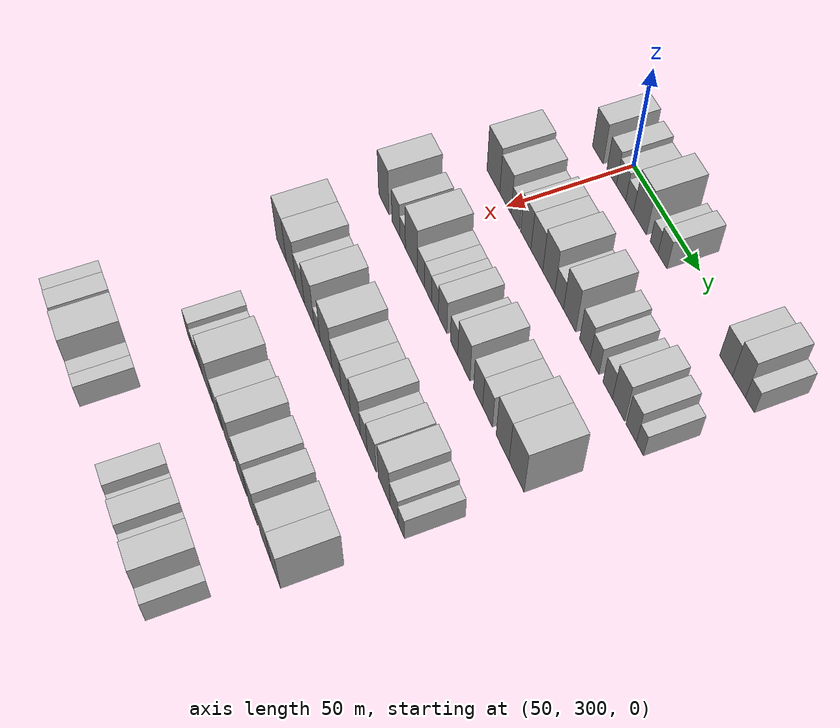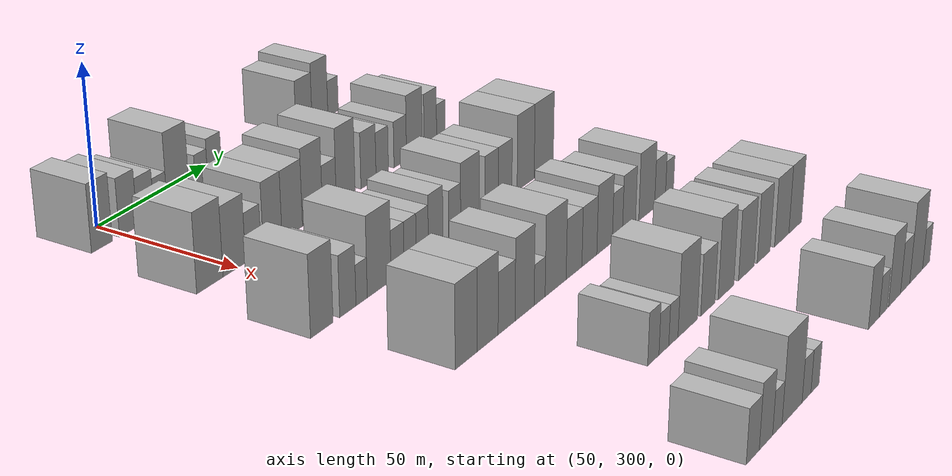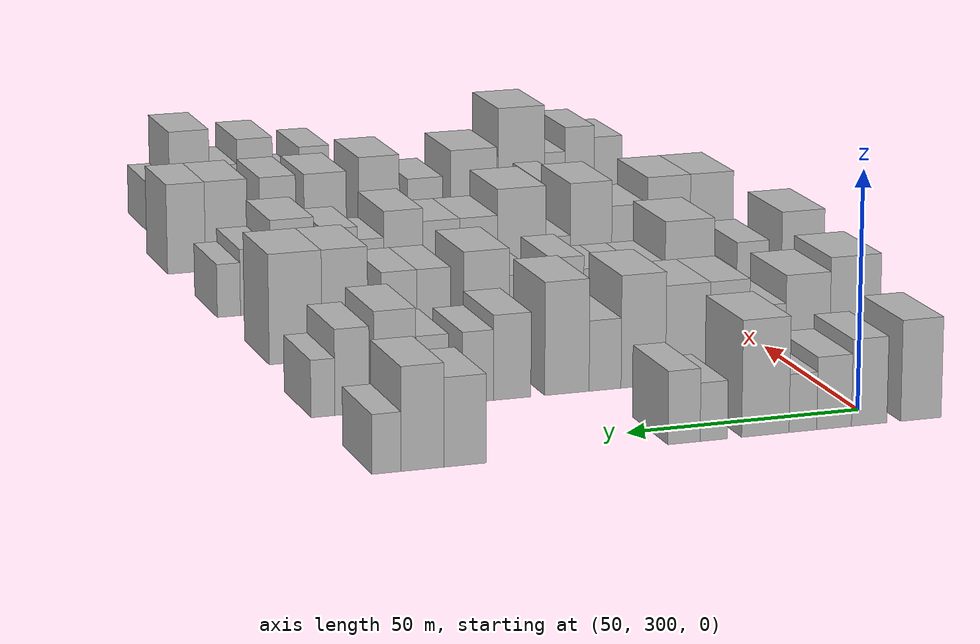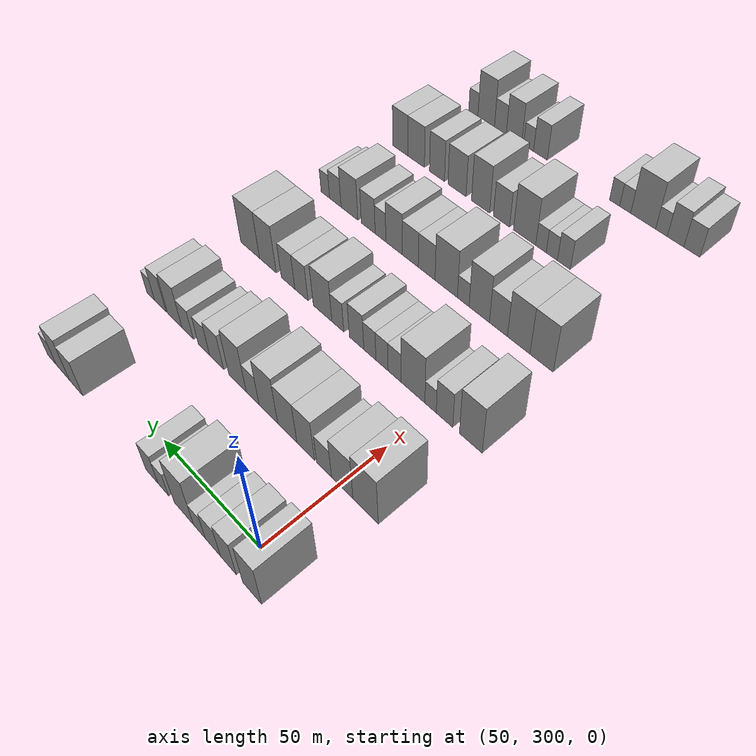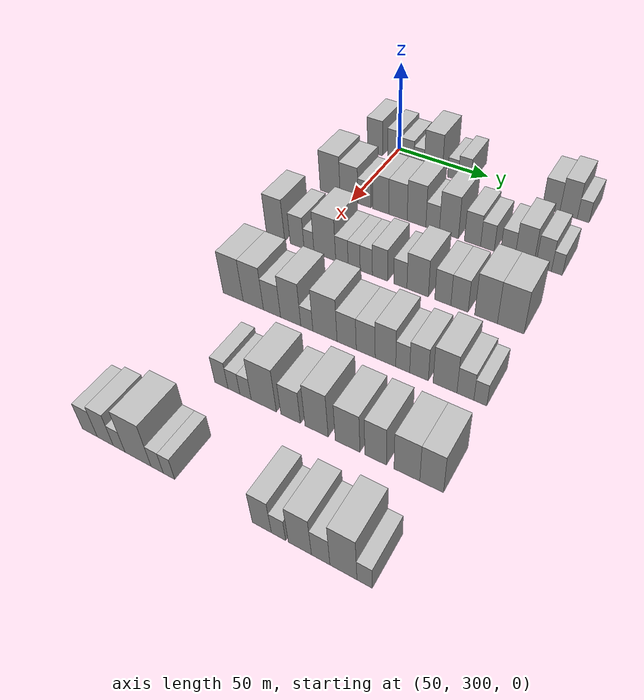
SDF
<sdf version="1.6">
 <world name="default">
  <model name="building_101">
   <static>1</static>
   <pose>50.0000 290.6442 0 0.000000 0.000000 0.000000</pose>
   <link name="link">
    <pose>0 0 10.50 0 0 0</pose>
    <collision name="collision"><geometry><box><size>20.0000 8.8867 21.0000</size></box></geometry></collision>
    <visual name="visual">
     <cast_shadows>0</cast_shadows>
     <geometry><box><size>20.0000 8.8867 21.0000</size></box></geometry>
     <material>
      <script>
       <uri>model://HANNAS_wall/materials/scripts</uri>
       <uri>model://HANNAS_wall/materials/textures</uri>
       <name>vrc/HANNAS_wall</name>
      </script>
     </material>
    </visual>
   </link>
  </model>
  <model name="building_102">
   <static>1</static>
   <pose>50.0000 301.9506 0 0.000000 0.000000 0.000000</pose>
   <link name="link">
    <pose>0 0 9.00 0 0 0</pose>
    <collision name="collision"><geometry><box><size>20.0000 7.7261 18.0000</size></box></geometry></collision>
    <visual name="visual">
     <cast_shadows>0</cast_shadows>
     <geometry><box><size>20.0000 7.7261 18.0000</size></box></geometry>
     <material>
      <script>
       <uri>model://HANNAS_wall/materials/scripts</uri>
       <uri>model://HANNAS_wall/materials/textures</uri>
       <name>vrc/HANNAS_wall</name>
      </script>
     </material>
    </visual>
   </link>
  </model>
  <model name="building_103">
   <static>1</static>
   <pose>50.0000 309.5635 0 0.000000 0.000000 0.000000</pose>
   <link name="link">
    <pose>0 0 7.50 0 0 0</pose>
    <collision name="collision"><geometry><box><size>20.0000 7.4997 15.0000</size></box></geometry></collision>
    <visual name="visual">
     <cast_shadows>0</cast_shadows>
     <geometry><box><size>20.0000 7.4997 15.0000</size></box></geometry>
     <material>
      <script>
       <uri>model://HANNAS_wall/materials/scripts</uri>
       <uri>model://HANNAS_wall/materials/textures</uri>
       <name>vrc/HANNAS_wall</name>
      </script>
     </material>
    </visual>
   </link>
  </model>
  <model name="building_104">
   <static>1</static>
   <pose>50.0000 316.2951 0 0.000000 0.000000 0.000000</pose>
   <link name="link">
    <pose>0 0 6.00 0 0 0</pose>
    <collision name="collision"><geometry><box><size>20.0000 5.9634 12.0000</size></box></geometry></collision>
    <visual name="visual">
     <cast_shadows>0</cast_shadows>
     <geometry><box><size>20.0000 5.9634 12.0000</size></box></geometry>
     <material>
      <script>
       <uri>model://HANNAS_wall/materials/scripts</uri>
       <uri>model://HANNAS_wall/materials/textures</uri>
       <name>vrc/HANNAS_wall</name>
      </script>
     </material>
    </visual>
   </link>
  </model>
  <model name="building_105">
   <static>1</static>
   <pose>50.0000 324.3649 0 0.000000 0.000000 0.000000</pose>
   <link name="link">
    <pose>0 0 12.00 0 0 0</pose>
    <collision name="collision"><geometry><box><size>20.0000 10.1764 24.0000</size></box></geometry></collision>
    <visual name="visual">
     <cast_shadows>0</cast_shadows>
     <geometry><box><size>20.0000 10.1764 24.0000</size></box></geometry>
     <material>
      <script>
       <uri>model://HANNAS_wall/materials/scripts</uri>
       <uri>model://HANNAS_wall/materials/textures</uri>
       <name>vrc/HANNAS_wall</name>
      </script>
     </material>
    </visual>
   </link>
  </model>
  <model name="building_106">
   <static>1</static>
   <pose>50.0000 335.3539 0 0.000000 0.000000 0.000000</pose>
   <link name="link">
    <pose>0 0 6.00 0 0 0</pose>
    <collision name="collision"><geometry><box><size>20.0000 5.8014 12.0000</size></box></geometry></collision>
    <visual name="visual">
     <cast_shadows>0</cast_shadows>
     <geometry><box><size>20.0000 5.8014 12.0000</size></box></geometry>
     <material>
      <script>
       <uri>model://HANNAS_wall/materials/scripts</uri>
       <uri>model://HANNAS_wall/materials/textures</uri>
       <name>vrc/HANNAS_wall</name>
      </script>
     </material>
    </visual>
   </link>
  </model>
  <model name="building_107">
   <static>1</static>
   <pose>50.0000 341.6605 0 0.000000 0.000000 0.000000</pose>
   <link name="link">
    <pose>0 0 7.50 0 0 0</pose>
    <collision name="collision"><geometry><box><size>20.0000 6.8118 15.0000</size></box></geometry></collision>
    <visual name="visual">
     <cast_shadows>0</cast_shadows>
     <geometry><box><size>20.0000 6.8118 15.0000</size></box></geometry>
     <material>
      <script>
       <uri>model://HANNAS_wall/materials/scripts</uri>
       <uri>model://HANNAS_wall/materials/textures</uri>
       <name>vrc/HANNAS_wall</name>
      </script>
     </material>
    </visual>
   </link>
  </model>
  <model name="building_108">
   <static>1</static>
   <pose>50.0000 387.0330 0 0.000000 0.000000 0.000000</pose>
   <link name="link">
    <pose>0 0 9.00 0 0 0</pose>
    <collision name="collision"><geometry><box><size>20.0000 8.6444 18.0000</size></box></geometry></collision>
    <visual name="visual">
     <cast_shadows>0</cast_shadows>
     <geometry><box><size>20.0000 8.6444 18.0000</size></box></geometry>
     <material>
      <script>
       <uri>model://HANNAS_wall/materials/scripts</uri>
       <uri>model://HANNAS_wall/materials/textures</uri>
       <name>vrc/HANNAS_wall</name>
      </script>
     </material>
    </visual>
   </link>
  </model>
  <model name="building_109">
   <static>1</static>
   <pose>50.0000 395.6896 0 0.000000 0.000000 0.000000</pose>
   <link name="link">
    <pose>0 0 10.50 0 0 0</pose>
    <collision name="collision"><geometry><box><size>20.0000 8.6689 21.0000</size></box></geometry></collision>
    <visual name="visual">
     <cast_shadows>0</cast_shadows>
     <geometry><box><size>20.0000 8.6689 21.0000</size></box></geometry>
     <material>
      <script>
       <uri>model://HANNAS_wall/materials/scripts</uri>
       <uri>model://HANNAS_wall/materials/textures</uri>
       <name>vrc/HANNAS_wall</name>
      </script>
     </material>
    </visual>
   </link>
  </model>
  <model name="building_110">
   <static>1</static>
   <pose>50.0000 402.9564 0 0.000000 0.000000 0.000000</pose>
   <link name="link">
    <pose>0 0 6.00 0 0 0</pose>
    <collision name="collision"><geometry><box><size>20.0000 5.8646 12.0000</size></box></geometry></collision>
    <visual name="visual">
     <cast_shadows>0</cast_shadows>
     <geometry><box><size>20.0000 5.8646 12.0000</size></box></geometry>
     <material>
      <script>
       <uri>model://HANNAS_wall/materials/scripts</uri>
       <uri>model://HANNAS_wall/materials/textures</uri>
       <name>vrc/HANNAS_wall</name>
      </script>
     </material>
    </visual>
   </link>
  </model>
  <model name="building_231">
   <static>1</static>
   <pose>90.0000 287.8248 0 0.000000 0.000000 0.000000</pose>
   <link name="link">
    <pose>0 0 12.00 0 0 0</pose>
    <collision name="collision"><geometry><box><size>20.0000 11.4323 24.0000</size></box></geometry></collision>
    <visual name="visual">
     <cast_shadows>0</cast_shadows>
     <geometry><box><size>20.0000 11.4323 24.0000</size></box></geometry>
     <material>
      <script>
       <uri>model://HANNAS_wall/materials/scripts</uri>
       <uri>model://HANNAS_wall/materials/textures</uri>
       <name>vrc/HANNAS_wall</name>
      </script>
     </material>
    </visual>
   </link>
  </model>
  <model name="building_232">
   <static>1</static>
   <pose>90.0000 298.5583 0 0.000000 0.000000 0.000000</pose>
   <link name="link">
    <pose>0 0 10.50 0 0 0</pose>
    <collision name="collision"><geometry><box><size>20.0000 10.0346 21.0000</size></box></geometry></collision>
    <visual name="visual">
     <cast_shadows>0</cast_shadows>
     <geometry><box><size>20.0000 10.0346 21.0000</size></box></geometry>
     <material>
      <script>
       <uri>model://HANNAS_wall/materials/scripts</uri>
       <uri>model://HANNAS_wall/materials/textures</uri>
       <name>vrc/HANNAS_wall</name>
      </script>
     </material>
    </visual>
   </link>
  </model>
  <model name="building_233">
   <static>1</static>
   <pose>90.0000 307.1530 0 0.000000 0.000000 0.000000</pose>
   <link name="link">
    <pose>0 0 7.50 0 0 0</pose>
    <collision name="collision"><geometry><box><size>20.0000 7.1548 15.0000</size></box></geometry></collision>
    <visual name="visual">
     <cast_shadows>0</cast_shadows>
     <geometry><box><size>20.0000 7.1548 15.0000</size></box></geometry>
     <material>
      <script>
       <uri>model://HANNAS_wall/materials/scripts</uri>
       <uri>model://HANNAS_wall/materials/textures</uri>
       <name>vrc/HANNAS_wall</name>
      </script>
     </material>
    </visual>
   </link>
  </model>
  <model name="building_234">
   <static>1</static>
   <pose>90.0000 316.1189 0 0.000000 0.000000 0.000000</pose>
   <link name="link">
    <pose>0 0 10.50 0 0 0</pose>
    <collision name="collision"><geometry><box><size>20.0000 8.7771 21.0000</size></box></geometry></collision>
    <visual name="visual">
     <cast_shadows>0</cast_shadows>
     <geometry><box><size>20.0000 8.7771 21.0000</size></box></geometry>
     <material>
      <script>
       <uri>model://HANNAS_wall/materials/scripts</uri>
       <uri>model://HANNAS_wall/materials/textures</uri>
       <name>vrc/HANNAS_wall</name>
      </script>
     </material>
    </visual>
   </link>
  </model>
  <model name="building_235">
   <static>1</static>
   <pose>90.0000 325.4033 0 0.000000 0.000000 0.000000</pose>
   <link name="link">
    <pose>0 0 10.50 0 0 0</pose>
    <collision name="collision"><geometry><box><size>20.0000 9.7916 21.0000</size></box></geometry></collision>
    <visual name="visual">
     <cast_shadows>0</cast_shadows>
     <geometry><box><size>20.0000 9.7916 21.0000</size></box></geometry>
     <material>
      <script>
       <uri>model://HANNAS_wall/materials/scripts</uri>
       <uri>model://HANNAS_wall/materials/textures</uri>
       <name>vrc/HANNAS_wall</name>
      </script>
     </material>
    </visual>
   </link>
  </model>
  <model name="building_236">
   <static>1</static>
   <pose>90.0000 335.2184 0 0.000000 0.000000 0.000000</pose>
   <link name="link">
    <pose>0 0 12.00 0 0 0</pose>
    <collision name="collision"><geometry><box><size>20.0000 9.8387 24.0000</size></box></geometry></collision>
    <visual name="visual">
     <cast_shadows>0</cast_shadows>
     <geometry><box><size>20.0000 9.8387 24.0000</size></box></geometry>
     <material>
      <script>
       <uri>model://HANNAS_wall/materials/scripts</uri>
       <uri>model://HANNAS_wall/materials/textures</uri>
       <name>vrc/HANNAS_wall</name>
      </script>
     </material>
    </visual>
   </link>
  </model>
  <model name="building_237">
   <static>1</static>
   <pose>90.0000 343.6370 0 0.000000 0.000000 0.000000</pose>
   <link name="link">
    <pose>0 0 7.50 0 0 0</pose>
    <collision name="collision"><geometry><box><size>20.0000 6.9984 15.0000</size></box></geometry></collision>
    <visual name="visual">
     <cast_shadows>0</cast_shadows>
     <geometry><box><size>20.0000 6.9984 15.0000</size></box></geometry>
     <material>
      <script>
       <uri>model://HANNAS_wall/materials/scripts</uri>
       <uri>model://HANNAS_wall/materials/textures</uri>
       <name>vrc/HANNAS_wall</name>
      </script>
     </material>
    </visual>
   </link>
  </model>
  <model name="building_238">
   <static>1</static>
   <pose>90.0000 351.9722 0 0.000000 0.000000 0.000000</pose>
   <link name="link">
    <pose>0 0 12.00 0 0 0</pose>
    <collision name="collision"><geometry><box><size>20.0000 9.6720 24.0000</size></box></geometry></collision>
    <visual name="visual">
     <cast_shadows>0</cast_shadows>
     <geometry><box><size>20.0000 9.6720 24.0000</size></box></geometry>
     <material>
      <script>
       <uri>model://HANNAS_wall/materials/scripts</uri>
       <uri>model://HANNAS_wall/materials/textures</uri>
       <name>vrc/HANNAS_wall</name>
      </script>
     </material>
    </visual>
   </link>
  </model>
  <model name="building_239">
   <static>1</static>
   <pose>90.0000 363.8295 0 0.000000 0.000000 0.000000</pose>
   <link name="link">
    <pose>0 0 9.00 0 0 0</pose>
    <collision name="collision"><geometry><box><size>20.0000 8.0427 18.0000</size></box></geometry></collision>
    <visual name="visual">
     <cast_shadows>0</cast_shadows>
     <geometry><box><size>20.0000 8.0427 18.0000</size></box></geometry>
     <material>
      <script>
       <uri>model://HANNAS_wall/materials/scripts</uri>
       <uri>model://HANNAS_wall/materials/textures</uri>
       <name>vrc/HANNAS_wall</name>
      </script>
     </material>
    </visual>
   </link>
  </model>
  <model name="building_240">
   <static>1</static>
   <pose>90.0000 371.1917 0 0.000000 0.000000 0.000000</pose>
   <link name="link">
    <pose>0 0 7.50 0 0 0</pose>
    <collision name="collision"><geometry><box><size>20.0000 6.6816 15.0000</size></box></geometry></collision>
    <visual name="visual">
     <cast_shadows>0</cast_shadows>
     <geometry><box><size>20.0000 6.6816 15.0000</size></box></geometry>
     <material>
      <script>
       <uri>model://HANNAS_wall/materials/scripts</uri>
       <uri>model://HANNAS_wall/materials/textures</uri>
       <name>vrc/HANNAS_wall</name>
      </script>
     </material>
    </visual>
   </link>
  </model>
  <model name="building_241">
   <static>1</static>
   <pose>90.0000 380.9994 0 0.000000 0.000000 0.000000</pose>
   <link name="link">
    <pose>0 0 7.50 0 0 0</pose>
    <collision name="collision"><geometry><box><size>20.0000 6.9339 15.0000</size></box></geometry></collision>
    <visual name="visual">
     <cast_shadows>0</cast_shadows>
     <geometry><box><size>20.0000 6.9339 15.0000</size></box></geometry>
     <material>
      <script>
       <uri>model://HANNAS_wall/materials/scripts</uri>
       <uri>model://HANNAS_wall/materials/textures</uri>
       <name>vrc/HANNAS_wall</name>
      </script>
     </material>
    </visual>
   </link>
  </model>
  <model name="building_242">
   <static>1</static>
   <pose>90.0000 388.9169 0 0.000000 0.000000 0.000000</pose>
   <link name="link">
    <pose>0 0 10.50 0 0 0</pose>
    <collision name="collision"><geometry><box><size>20.0000 8.9010 21.0000</size></box></geometry></collision>
    <visual name="visual">
     <cast_shadows>0</cast_shadows>
     <geometry><box><size>20.0000 8.9010 21.0000</size></box></geometry>
     <material>
      <script>
       <uri>model://HANNAS_wall/materials/scripts</uri>
       <uri>model://HANNAS_wall/materials/textures</uri>
       <name>vrc/HANNAS_wall</name>
      </script>
     </material>
    </visual>
   </link>
  </model>
  <model name="building_243">
   <static>1</static>
   <pose>90.0000 397.9964 0 0.000000 0.000000 0.000000</pose>
   <link name="link">
    <pose>0 0 9.00 0 0 0</pose>
    <collision name="collision"><geometry><box><size>20.0000 7.2580 18.0000</size></box></geometry></collision>
    <visual name="visual">
     <cast_shadows>0</cast_shadows>
     <geometry><box><size>20.0000 7.2580 18.0000</size></box></geometry>
     <material>
      <script>
       <uri>model://HANNAS_wall/materials/scripts</uri>
       <uri>model://HANNAS_wall/materials/textures</uri>
       <name>vrc/HANNAS_wall</name>
      </script>
     </material>
    </visual>
   </link>
  </model>
  <model name="building_244">
   <static>1</static>
   <pose>90.0000 404.1428 0 0.000000 0.000000 0.000000</pose>
   <link name="link">
    <pose>0 0 6.00 0 0 0</pose>
    <collision name="collision"><geometry><box><size>20.0000 5.0347 12.0000</size></box></geometry></collision>
    <visual name="visual">
     <cast_shadows>0</cast_shadows>
     <geometry><box><size>20.0000 5.0347 12.0000</size></box></geometry>
     <material>
      <script>
       <uri>model://HANNAS_wall/materials/scripts</uri>
       <uri>model://HANNAS_wall/materials/textures</uri>
       <name>vrc/HANNAS_wall</name>
      </script>
     </material>
    </visual>
   </link>
  </model>
  <model name="building_364">
   <static>1</static>
   <pose>130.0000 282.9836 0 0.000000 0.000000 0.000000</pose>
   <link name="link">
    <pose>0 0 12.00 0 0 0</pose>
    <collision name="collision"><geometry><box><size>20.0000 10.0665 24.0000</size></box></geometry></collision>
    <visual name="visual">
     <cast_shadows>0</cast_shadows>
     <geometry><box><size>20.0000 10.0665 24.0000</size></box></geometry>
     <material>
      <script>
       <uri>model://HANNAS_wall/materials/scripts</uri>
       <uri>model://HANNAS_wall/materials/textures</uri>
       <name>vrc/HANNAS_wall</name>
      </script>
     </material>
    </visual>
   </link>
  </model>
  <model name="building_365">
   <static>1</static>
   <pose>130.0000 294.7832 0 0.000000 0.000000 0.000000</pose>
   <link name="link">
    <pose>0 0 9.00 0 0 0</pose>
    <collision name="collision"><geometry><box><size>20.0000 7.5327 18.0000</size></box></geometry></collision>
    <visual name="visual">
     <cast_shadows>0</cast_shadows>
     <geometry><box><size>20.0000 7.5327 18.0000</size></box></geometry>
     <material>
      <script>
       <uri>model://HANNAS_wall/materials/scripts</uri>
       <uri>model://HANNAS_wall/materials/textures</uri>
       <name>vrc/HANNAS_wall</name>
      </script>
     </material>
    </visual>
   </link>
  </model>
  <model name="building_366">
   <static>1</static>
   <pose>130.0000 301.1990 0 0.000000 0.000000 0.000000</pose>
   <link name="link">
    <pose>0 0 6.00 0 0 0</pose>
    <collision name="collision"><geometry><box><size>20.0000 5.2990 12.0000</size></box></geometry></collision>
    <visual name="visual">
     <cast_shadows>0</cast_shadows>
     <geometry><box><size>20.0000 5.2990 12.0000</size></box></geometry>
     <material>
      <script>
       <uri>model://HANNAS_wall/materials/scripts</uri>
       <uri>model://HANNAS_wall/materials/textures</uri>
       <name>vrc/HANNAS_wall</name>
      </script>
     </material>
    </visual>
   </link>
  </model>
  <model name="building_367">
   <static>1</static>
   <pose>130.0000 309.5698 0 0.000000 0.000000 0.000000</pose>
   <link name="link">
    <pose>0 0 12.00 0 0 0</pose>
    <collision name="collision"><geometry><box><size>20.0000 11.4425 24.0000</size></box></geometry></collision>
    <visual name="visual">
     <cast_shadows>0</cast_shadows>
     <geometry><box><size>20.0000 11.4425 24.0000</size></box></geometry>
     <material>
      <script>
       <uri>model://HANNAS_wall/materials/scripts</uri>
       <uri>model://HANNAS_wall/materials/textures</uri>
       <name>vrc/HANNAS_wall</name>
      </script>
     </material>
    </visual>
   </link>
  </model>
  <model name="building_368">
   <static>1</static>
   <pose>130.0000 318.5091 0 0.000000 0.000000 0.000000</pose>
   <link name="link">
    <pose>0 0 7.50 0 0 0</pose>
    <collision name="collision"><geometry><box><size>20.0000 6.4362 15.0000</size></box></geometry></collision>
    <visual name="visual">
     <cast_shadows>0</cast_shadows>
     <geometry><box><size>20.0000 6.4362 15.0000</size></box></geometry>
     <material>
      <script>
       <uri>model://HANNAS_wall/materials/scripts</uri>
       <uri>model://HANNAS_wall/materials/textures</uri>
       <name>vrc/HANNAS_wall</name>
      </script>
     </material>
    </visual>
   </link>
  </model>
  <model name="building_369">
   <static>1</static>
   <pose>130.0000 324.7804 0 0.000000 0.000000 0.000000</pose>
   <link name="link">
    <pose>0 0 7.50 0 0 0</pose>
    <collision name="collision"><geometry><box><size>20.0000 6.1064 15.0000</size></box></geometry></collision>
    <visual name="visual">
     <cast_shadows>0</cast_shadows>
     <geometry><box><size>20.0000 6.1064 15.0000</size></box></geometry>
     <material>
      <script>
       <uri>model://HANNAS_wall/materials/scripts</uri>
       <uri>model://HANNAS_wall/materials/textures</uri>
       <name>vrc/HANNAS_wall</name>
      </script>
     </material>
    </visual>
   </link>
  </model>
  <model name="building_370">
   <static>1</static>
   <pose>130.0000 330.9156 0 0.000000 0.000000 0.000000</pose>
   <link name="link">
    <pose>0 0 7.50 0 0 0</pose>
    <collision name="collision"><geometry><box><size>20.0000 6.1640 15.0000</size></box></geometry></collision>
    <visual name="visual">
     <cast_shadows>0</cast_shadows>
     <geometry><box><size>20.0000 6.1640 15.0000</size></box></geometry>
     <material>
      <script>
       <uri>model://HANNAS_wall/materials/scripts</uri>
       <uri>model://HANNAS_wall/materials/textures</uri>
       <name>vrc/HANNAS_wall</name>
      </script>
     </material>
    </visual>
   </link>
  </model>
  <model name="building_371">
   <static>1</static>
   <pose>130.0000 337.7819 0 0.000000 0.000000 0.000000</pose>
   <link name="link">
    <pose>0 0 9.00 0 0 0</pose>
    <collision name="collision"><geometry><box><size>20.0000 7.5685 18.0000</size></box></geometry></collision>
    <visual name="visual">
     <cast_shadows>0</cast_shadows>
     <geometry><box><size>20.0000 7.5685 18.0000</size></box></geometry>
     <material>
      <script>
       <uri>model://HANNAS_wall/materials/scripts</uri>
       <uri>model://HANNAS_wall/materials/textures</uri>
       <name>vrc/HANNAS_wall</name>
      </script>
     </material>
    </visual>
   </link>
  </model>
  <model name="building_372">
   <static>1</static>
   <pose>130.0000 347.7725 0 0.000000 0.000000 0.000000</pose>
   <link name="link">
    <pose>0 0 7.50 0 0 0</pose>
    <collision name="collision"><geometry><box><size>20.0000 6.4128 15.0000</size></box></geometry></collision>
    <visual name="visual">
     <cast_shadows>0</cast_shadows>
     <geometry><box><size>20.0000 6.4128 15.0000</size></box></geometry>
     <material>
      <script>
       <uri>model://HANNAS_wall/materials/scripts</uri>
       <uri>model://HANNAS_wall/materials/textures</uri>
       <name>vrc/HANNAS_wall</name>
      </script>
     </material>
    </visual>
   </link>
  </model>
  <model name="building_373">
   <static>1</static>
   <pose>130.0000 356.0999 0 0.000000 0.000000 0.000000</pose>
   <link name="link">
    <pose>0 0 10.50 0 0 0</pose>
    <collision name="collision"><geometry><box><size>20.0000 10.2420 21.0000</size></box></geometry></collision>
    <visual name="visual">
     <cast_shadows>0</cast_shadows>
     <geometry><box><size>20.0000 10.2420 21.0000</size></box></geometry>
     <material>
      <script>
       <uri>model://HANNAS_wall/materials/scripts</uri>
       <uri>model://HANNAS_wall/materials/textures</uri>
       <name>vrc/HANNAS_wall</name>
      </script>
     </material>
    </visual>
   </link>
  </model>
  <model name="building_374">
   <static>1</static>
   <pose>130.0000 367.9770 0 0.000000 0.000000 0.000000</pose>
   <link name="link">
    <pose>0 0 9.00 0 0 0</pose>
    <collision name="collision"><geometry><box><size>20.0000 7.5122 18.0000</size></box></geometry></collision>
    <visual name="visual">
     <cast_shadows>0</cast_shadows>
     <geometry><box><size>20.0000 7.5122 18.0000</size></box></geometry>
     <material>
      <script>
       <uri>model://HANNAS_wall/materials/scripts</uri>
       <uri>model://HANNAS_wall/materials/textures</uri>
       <name>vrc/HANNAS_wall</name>
      </script>
     </material>
    </visual>
   </link>
  </model>
  <model name="building_375">
   <static>1</static>
   <pose>130.0000 375.6796 0 0.000000 0.000000 0.000000</pose>
   <link name="link">
    <pose>0 0 9.00 0 0 0</pose>
    <collision name="collision"><geometry><box><size>20.0000 7.8931 18.0000</size></box></geometry></collision>
    <visual name="visual">
     <cast_shadows>0</cast_shadows>
     <geometry><box><size>20.0000 7.8931 18.0000</size></box></geometry>
     <material>
      <script>
       <uri>model://HANNAS_wall/materials/scripts</uri>
       <uri>model://HANNAS_wall/materials/textures</uri>
       <name>vrc/HANNAS_wall</name>
      </script>
     </material>
    </visual>
   </link>
  </model>
  <model name="building_376">
   <static>1</static>
   <pose>130.0000 387.6899 0 0.000000 0.000000 0.000000</pose>
   <link name="link">
    <pose>0 0 12.00 0 0 0</pose>
    <collision name="collision"><geometry><box><size>20.0000 10.1274 24.0000</size></box></geometry></collision>
    <visual name="visual">
     <cast_shadows>0</cast_shadows>
     <geometry><box><size>20.0000 10.1274 24.0000</size></box></geometry>
     <material>
      <script>
       <uri>model://HANNAS_wall/materials/scripts</uri>
       <uri>model://HANNAS_wall/materials/textures</uri>
       <name>vrc/HANNAS_wall</name>
      </script>
     </material>
    </visual>
   </link>
  </model>
  <model name="building_377">
   <static>1</static>
   <pose>130.0000 398.5614 0 0.000000 0.000000 0.000000</pose>
   <link name="link">
    <pose>0 0 12.00 0 0 0</pose>
    <collision name="collision"><geometry><box><size>20.0000 11.6157 24.0000</size></box></geometry></collision>
    <visual name="visual">
     <cast_shadows>0</cast_shadows>
     <geometry><box><size>20.0000 11.6157 24.0000</size></box></geometry>
     <material>
      <script>
       <uri>model://HANNAS_wall/materials/scripts</uri>
       <uri>model://HANNAS_wall/materials/textures</uri>
       <name>vrc/HANNAS_wall</name>
      </script>
     </material>
    </visual>
   </link>
  </model>
  <model name="building_508">
   <static>1</static>
   <pose>170.0000 288.6994 0 0.000000 0.000000 0.000000</pose>
   <link name="link">
    <pose>0 0 12.00 0 0 0</pose>
    <collision name="collision"><geometry><box><size>20.0000 10.4702 24.0000</size></box></geometry></collision>
    <visual name="visual">
     <cast_shadows>0</cast_shadows>
     <geometry><box><size>20.0000 10.4702 24.0000</size></box></geometry>
     <material>
      <script>
       <uri>model://HANNAS_wall/materials/scripts</uri>
       <uri>model://HANNAS_wall/materials/textures</uri>
       <name>vrc/HANNAS_wall</name>
      </script>
     </material>
    </visual>
   </link>
  </model>
  <model name="building_509">
   <static>1</static>
   <pose>170.0000 299.1387 0 0.000000 0.000000 0.000000</pose>
   <link name="link">
    <pose>0 0 12.00 0 0 0</pose>
    <collision name="collision"><geometry><box><size>20.0000 10.4083 24.0000</size></box></geometry></collision>
    <visual name="visual">
     <cast_shadows>0</cast_shadows>
     <geometry><box><size>20.0000 10.4083 24.0000</size></box></geometry>
     <material>
      <script>
       <uri>model://HANNAS_wall/materials/scripts</uri>
       <uri>model://HANNAS_wall/materials/textures</uri>
       <name>vrc/HANNAS_wall</name>
      </script>
     </material>
    </visual>
   </link>
  </model>
  <model name="building_510">
   <static>1</static>
   <pose>170.0000 308.6400 0 0.000000 0.000000 0.000000</pose>
   <link name="link">
    <pose>0 0 9.00 0 0 0</pose>
    <collision name="collision"><geometry><box><size>20.0000 8.5945 18.0000</size></box></geometry></collision>
    <visual name="visual">
     <cast_shadows>0</cast_shadows>
     <geometry><box><size>20.0000 8.5945 18.0000</size></box></geometry>
     <material>
      <script>
       <uri>model://HANNAS_wall/materials/scripts</uri>
       <uri>model://HANNAS_wall/materials/textures</uri>
       <name>vrc/HANNAS_wall</name>
      </script>
     </material>
    </visual>
   </link>
  </model>
  <model name="building_511">
   <static>1</static>
   <pose>170.0000 317.9187 0 0.000000 0.000000 0.000000</pose>
   <link name="link">
    <pose>0 0 12.00 0 0 0</pose>
    <collision name="collision"><geometry><box><size>20.0000 9.9629 24.0000</size></box></geometry></collision>
    <visual name="visual">
     <cast_shadows>0</cast_shadows>
     <geometry><box><size>20.0000 9.9629 24.0000</size></box></geometry>
     <material>
      <script>
       <uri>model://HANNAS_wall/materials/scripts</uri>
       <uri>model://HANNAS_wall/materials/textures</uri>
       <name>vrc/HANNAS_wall</name>
      </script>
     </material>
    </visual>
   </link>
  </model>
  <model name="building_512">
   <static>1</static>
   <pose>170.0000 325.8281 0 0.000000 0.000000 0.000000</pose>
   <link name="link">
    <pose>0 0 6.00 0 0 0</pose>
    <collision name="collision"><geometry><box><size>20.0000 5.8559 12.0000</size></box></geometry></collision>
    <visual name="visual">
     <cast_shadows>0</cast_shadows>
     <geometry><box><size>20.0000 5.8559 12.0000</size></box></geometry>
     <material>
      <script>
       <uri>model://HANNAS_wall/materials/scripts</uri>
       <uri>model://HANNAS_wall/materials/textures</uri>
       <name>vrc/HANNAS_wall</name>
      </script>
     </material>
    </visual>
   </link>
  </model>
  <model name="building_513">
   <static>1</static>
   <pose>170.0000 334.4964 0 0.000000 0.000000 0.000000</pose>
   <link name="link">
    <pose>0 0 12.00 0 0 0</pose>
    <collision name="collision"><geometry><box><size>20.0000 11.4805 24.0000</size></box></geometry></collision>
    <visual name="visual">
     <cast_shadows>0</cast_shadows>
     <geometry><box><size>20.0000 11.4805 24.0000</size></box></geometry>
     <material>
      <script>
       <uri>model://HANNAS_wall/materials/scripts</uri>
       <uri>model://HANNAS_wall/materials/textures</uri>
       <name>vrc/HANNAS_wall</name>
      </script>
     </material>
    </visual>
   </link>
  </model>
  <model name="building_514">
   <static>1</static>
   <pose>170.0000 344.6749 0 0.000000 0.000000 0.000000</pose>
   <link name="link">
    <pose>0 0 9.00 0 0 0</pose>
    <collision name="collision"><geometry><box><size>20.0000 8.8765 18.0000</size></box></geometry></collision>
    <visual name="visual">
     <cast_shadows>0</cast_shadows>
     <geometry><box><size>20.0000 8.8765 18.0000</size></box></geometry>
     <material>
      <script>
       <uri>model://HANNAS_wall/materials/scripts</uri>
       <uri>model://HANNAS_wall/materials/textures</uri>
       <name>vrc/HANNAS_wall</name>
      </script>
     </material>
    </visual>
   </link>
  </model>
  <model name="building_515">
   <static>1</static>
   <pose>170.0000 353.4121 0 0.000000 0.000000 0.000000</pose>
   <link name="link">
    <pose>0 0 9.00 0 0 0</pose>
    <collision name="collision"><geometry><box><size>20.0000 8.5979 18.0000</size></box></geometry></collision>
    <visual name="visual">
     <cast_shadows>0</cast_shadows>
     <geometry><box><size>20.0000 8.5979 18.0000</size></box></geometry>
     <material>
      <script>
       <uri>model://HANNAS_wall/materials/scripts</uri>
       <uri>model://HANNAS_wall/materials/textures</uri>
       <name>vrc/HANNAS_wall</name>
      </script>
     </material>
    </visual>
   </link>
  </model>
  <model name="building_516">
   <static>1</static>
   <pose>170.0000 362.2802 0 0.000000 0.000000 0.000000</pose>
   <link name="link">
    <pose>0 0 10.50 0 0 0</pose>
    <collision name="collision"><geometry><box><size>20.0000 9.1382 21.0000</size></box></geometry></collision>
    <visual name="visual">
     <cast_shadows>0</cast_shadows>
     <geometry><box><size>20.0000 9.1382 21.0000</size></box></geometry>
     <material>
      <script>
       <uri>model://HANNAS_wall/materials/scripts</uri>
       <uri>model://HANNAS_wall/materials/textures</uri>
       <name>vrc/HANNAS_wall</name>
      </script>
     </material>
    </visual>
   </link>
  </model>
  <model name="building_517">
   <static>1</static>
   <pose>170.0000 369.8958 0 0.000000 0.000000 0.000000</pose>
   <link name="link">
    <pose>0 0 7.50 0 0 0</pose>
    <collision name="collision"><geometry><box><size>20.0000 6.0931 15.0000</size></box></geometry></collision>
    <visual name="visual">
     <cast_shadows>0</cast_shadows>
     <geometry><box><size>20.0000 6.0931 15.0000</size></box></geometry>
     <material>
      <script>
       <uri>model://HANNAS_wall/materials/scripts</uri>
       <uri>model://HANNAS_wall/materials/textures</uri>
       <name>vrc/HANNAS_wall</name>
      </script>
     </material>
    </visual>
   </link>
  </model>
  <model name="building_518">
   <static>1</static>
   <pose>170.0000 376.9544 0 0.000000 0.000000 0.000000</pose>
   <link name="link">
    <pose>0 0 9.00 0 0 0</pose>
    <collision name="collision"><geometry><box><size>20.0000 8.0240 18.0000</size></box></geometry></collision>
    <visual name="visual">
     <cast_shadows>0</cast_shadows>
     <geometry><box><size>20.0000 8.0240 18.0000</size></box></geometry>
     <material>
      <script>
       <uri>model://HANNAS_wall/materials/scripts</uri>
       <uri>model://HANNAS_wall/materials/textures</uri>
       <name>vrc/HANNAS_wall</name>
      </script>
     </material>
    </visual>
   </link>
  </model>
  <model name="building_519">
   <static>1</static>
   <pose>170.0000 387.9676 0 0.000000 0.000000 0.000000</pose>
   <link name="link">
    <pose>0 0 10.50 0 0 0</pose>
    <collision name="collision"><geometry><box><size>20.0000 10.0024 21.0000</size></box></geometry></collision>
    <visual name="visual">
     <cast_shadows>0</cast_shadows>
     <geometry><box><size>20.0000 10.0024 21.0000</size></box></geometry>
     <material>
      <script>
       <uri>model://HANNAS_wall/materials/scripts</uri>
       <uri>model://HANNAS_wall/materials/textures</uri>
       <name>vrc/HANNAS_wall</name>
      </script>
     </material>
    </visual>
   </link>
  </model>
  <model name="building_520">
   <static>1</static>
   <pose>170.0000 396.4458 0 0.000000 0.000000 0.000000</pose>
   <link name="link">
    <pose>0 0 7.50 0 0 0</pose>
    <collision name="collision"><geometry><box><size>20.0000 6.9541 15.0000</size></box></geometry></collision>
    <visual name="visual">
     <cast_shadows>0</cast_shadows>
     <geometry><box><size>20.0000 6.9541 15.0000</size></box></geometry>
     <material>
      <script>
       <uri>model://HANNAS_wall/materials/scripts</uri>
       <uri>model://HANNAS_wall/materials/textures</uri>
       <name>vrc/HANNAS_wall</name>
      </script>
     </material>
    </visual>
   </link>
  </model>
  <model name="building_521">
   <static>1</static>
   <pose>170.0000 402.5576 0 0.000000 0.000000 0.000000</pose>
   <link name="link">
    <pose>0 0 6.00 0 0 0</pose>
    <collision name="collision"><geometry><box><size>20.0000 5.2695 12.0000</size></box></geometry></collision>
    <visual name="visual">
     <cast_shadows>0</cast_shadows>
     <geometry><box><size>20.0000 5.2695 12.0000</size></box></geometry>
     <material>
      <script>
       <uri>model://HANNAS_wall/materials/scripts</uri>
       <uri>model://HANNAS_wall/materials/textures</uri>
       <name>vrc/HANNAS_wall</name>
      </script>
     </material>
    </visual>
   </link>
  </model>
  <model name="building_646">
   <static>1</static>
   <pose>210.0000 313.0678 0 0.000000 0.000000 0.000000</pose>
   <link name="link">
    <pose>0 0 7.50 0 0 0</pose>
    <collision name="collision"><geometry><box><size>20.0000 6.2548 15.0000</size></box></geometry></collision>
    <visual name="visual">
     <cast_shadows>0</cast_shadows>
     <geometry><box><size>20.0000 6.2548 15.0000</size></box></geometry>
     <material>
      <script>
       <uri>model://HANNAS_wall/materials/scripts</uri>
       <uri>model://HANNAS_wall/materials/textures</uri>
       <name>vrc/HANNAS_wall</name>
      </script>
     </material>
    </visual>
   </link>
  </model>
  <model name="building_647">
   <static>1</static>
   <pose>210.0000 318.9547 0 0.000000 0.000000 0.000000</pose>
   <link name="link">
    <pose>0 0 6.00 0 0 0</pose>
    <collision name="collision"><geometry><box><size>20.0000 5.5191 12.0000</size></box></geometry></collision>
    <visual name="visual">
     <cast_shadows>0</cast_shadows>
     <geometry><box><size>20.0000 5.5191 12.0000</size></box></geometry>
     <material>
      <script>
       <uri>model://HANNAS_wall/materials/scripts</uri>
       <uri>model://HANNAS_wall/materials/textures</uri>
       <name>vrc/HANNAS_wall</name>
      </script>
     </material>
    </visual>
   </link>
  </model>
  <model name="building_648">
   <static>1</static>
   <pose>210.0000 324.3394 0 0.000000 0.000000 0.000000</pose>
   <link name="link">
    <pose>0 0 6.00 0 0 0</pose>
    <collision name="collision"><geometry><box><size>20.0000 5.2503 12.0000</size></box></geometry></collision>
    <visual name="visual">
     <cast_shadows>0</cast_shadows>
     <geometry><box><size>20.0000 5.2503 12.0000</size></box></geometry>
     <material>
      <script>
       <uri>model://HANNAS_wall/materials/scripts</uri>
       <uri>model://HANNAS_wall/materials/textures</uri>
       <name>vrc/HANNAS_wall</name>
      </script>
     </material>
    </visual>
   </link>
  </model>
  <model name="building_649">
   <static>1</static>
   <pose>210.0000 332.6374 0 0.000000 0.000000 0.000000</pose>
   <link name="link">
    <pose>0 0 12.00 0 0 0</pose>
    <collision name="collision"><geometry><box><size>20.0000 11.3456 24.0000</size></box></geometry></collision>
    <visual name="visual">
     <cast_shadows>0</cast_shadows>
     <geometry><box><size>20.0000 11.3456 24.0000</size></box></geometry>
     <material>
      <script>
       <uri>model://HANNAS_wall/materials/scripts</uri>
       <uri>model://HANNAS_wall/materials/textures</uri>
       <name>vrc/HANNAS_wall</name>
      </script>
     </material>
    </visual>
   </link>
  </model>
  <model name="building_650">
   <static>1</static>
   <pose>210.0000 344.5930 0 0.000000 0.000000 0.000000</pose>
   <link name="link">
    <pose>0 0 9.00 0 0 0</pose>
    <collision name="collision"><geometry><box><size>20.0000 8.5656 18.0000</size></box></geometry></collision>
    <visual name="visual">
     <cast_shadows>0</cast_shadows>
     <geometry><box><size>20.0000 8.5656 18.0000</size></box></geometry>
     <material>
      <script>
       <uri>model://HANNAS_wall/materials/scripts</uri>
       <uri>model://HANNAS_wall/materials/textures</uri>
       <name>vrc/HANNAS_wall</name>
      </script>
     </material>
    </visual>
   </link>
  </model>
  <model name="building_651">
   <static>1</static>
   <pose>210.0000 355.8068 0 0.000000 0.000000 0.000000</pose>
   <link name="link">
    <pose>0 0 12.00 0 0 0</pose>
    <collision name="collision"><geometry><box><size>20.0000 9.8619 24.0000</size></box></geometry></collision>
    <visual name="visual">
     <cast_shadows>0</cast_shadows>
     <geometry><box><size>20.0000 9.8619 24.0000</size></box></geometry>
     <material>
      <script>
       <uri>model://HANNAS_wall/materials/scripts</uri>
       <uri>model://HANNAS_wall/materials/textures</uri>
       <name>vrc/HANNAS_wall</name>
      </script>
     </material>
    </visual>
   </link>
  </model>
  <model name="building_652">
   <static>1</static>
   <pose>210.0000 368.8123 0 0.000000 0.000000 0.000000</pose>
   <link name="link">
    <pose>0 0 10.50 0 0 0</pose>
    <collision name="collision"><geometry><box><size>20.0000 10.1492 21.0000</size></box></geometry></collision>
    <visual name="visual">
     <cast_shadows>0</cast_shadows>
     <geometry><box><size>20.0000 10.1492 21.0000</size></box></geometry>
     <material>
      <script>
       <uri>model://HANNAS_wall/materials/scripts</uri>
       <uri>model://HANNAS_wall/materials/textures</uri>
       <name>vrc/HANNAS_wall</name>
      </script>
     </material>
    </visual>
   </link>
  </model>
  <model name="building_653">
   <static>1</static>
   <pose>210.0000 380.2034 0 0.000000 0.000000 0.000000</pose>
   <link name="link">
    <pose>0 0 10.50 0 0 0</pose>
    <collision name="collision"><geometry><box><size>20.0000 8.6329 21.0000</size></box></geometry></collision>
    <visual name="visual">
     <cast_shadows>0</cast_shadows>
     <geometry><box><size>20.0000 8.6329 21.0000</size></box></geometry>
     <material>
      <script>
       <uri>model://HANNAS_wall/materials/scripts</uri>
       <uri>model://HANNAS_wall/materials/textures</uri>
       <name>vrc/HANNAS_wall</name>
      </script>
     </material>
    </visual>
   </link>
  </model>
  <model name="building_654">
   <static>1</static>
   <pose>210.0000 392.5111 0 0.000000 0.000000 0.000000</pose>
   <link name="link">
    <pose>0 0 10.50 0 0 0</pose>
    <collision name="collision"><geometry><box><size>20.0000 9.9826 21.0000</size></box></geometry></collision>
    <visual name="visual">
     <cast_shadows>0</cast_shadows>
     <geometry><box><size>20.0000 9.9826 21.0000</size></box></geometry>
     <material>
      <script>
       <uri>model://HANNAS_wall/materials/scripts</uri>
       <uri>model://HANNAS_wall/materials/textures</uri>
       <name>vrc/HANNAS_wall</name>
      </script>
     </material>
    </visual>
   </link>
  </model>
  <model name="building_655">
   <static>1</static>
   <pose>210.0000 401.9969 0 0.000000 0.000000 0.000000</pose>
   <link name="link">
    <pose>0 0 10.50 0 0 0</pose>
    <collision name="collision"><geometry><box><size>20.0000 8.9890 21.0000</size></box></geometry></collision>
    <visual name="visual">
     <cast_shadows>0</cast_shadows>
     <geometry><box><size>20.0000 8.9890 21.0000</size></box></geometry>
     <material>
      <script>
       <uri>model://HANNAS_wall/materials/scripts</uri>
       <uri>model://HANNAS_wall/materials/textures</uri>
       <name>vrc/HANNAS_wall</name>
      </script>
     </material>
    </visual>
   </link>
  </model>
  <model name="building_779">
   <static>1</static>
   <pose>250.0000 284.5922 0 0.000000 0.000000 0.000000</pose>
   <link name="link">
    <pose>0 0 7.50 0 0 0</pose>
    <collision name="collision"><geometry><box><size>20.0000 7.2419 15.0000</size></box></geometry></collision>
    <visual name="visual">
     <cast_shadows>0</cast_shadows>
     <geometry><box><size>20.0000 7.2419 15.0000</size></box></geometry>
     <material>
      <script>
       <uri>model://HANNAS_wall/materials/scripts</uri>
       <uri>model://HANNAS_wall/materials/textures</uri>
       <name>vrc/HANNAS_wall</name>
      </script>
     </material>
    </visual>
   </link>
  </model>
  <model name="building_780">
   <static>1</static>
   <pose>250.0000 292.0168 0 0.000000 0.000000 0.000000</pose>
   <link name="link">
    <pose>0 0 9.00 0 0 0</pose>
    <collision name="collision"><geometry><box><size>20.0000 7.6072 18.0000</size></box></geometry></collision>
    <visual name="visual">
     <cast_shadows>0</cast_shadows>
     <geometry><box><size>20.0000 7.6072 18.0000</size></box></geometry>
     <material>
      <script>
       <uri>model://HANNAS_wall/materials/scripts</uri>
       <uri>model://HANNAS_wall/materials/textures</uri>
       <name>vrc/HANNAS_wall</name>
      </script>
     </material>
    </visual>
   </link>
  </model>
  <model name="building_781">
   <static>1</static>
   <pose>250.0000 298.5430 0 0.000000 0.000000 0.000000</pose>
   <link name="link">
    <pose>0 0 6.00 0 0 0</pose>
    <collision name="collision"><geometry><box><size>20.0000 5.4452 12.0000</size></box></geometry></collision>
    <visual name="visual">
     <cast_shadows>0</cast_shadows>
     <geometry><box><size>20.0000 5.4452 12.0000</size></box></geometry>
     <material>
      <script>
       <uri>model://HANNAS_wall/materials/scripts</uri>
       <uri>model://HANNAS_wall/materials/textures</uri>
       <name>vrc/HANNAS_wall</name>
      </script>
     </material>
    </visual>
   </link>
  </model>
  <model name="building_782">
   <static>1</static>
   <pose>250.0000 307.2412 0 0.000000 0.000000 0.000000</pose>
   <link name="link">
    <pose>0 0 12.00 0 0 0</pose>
    <collision name="collision"><geometry><box><size>20.0000 11.9512 24.0000</size></box></geometry></collision>
    <visual name="visual">
     <cast_shadows>0</cast_shadows>
     <geometry><box><size>20.0000 11.9512 24.0000</size></box></geometry>
     <material>
      <script>
       <uri>model://HANNAS_wall/materials/scripts</uri>
       <uri>model://HANNAS_wall/materials/textures</uri>
       <name>vrc/HANNAS_wall</name>
      </script>
     </material>
    </visual>
   </link>
  </model>
  <model name="building_783">
   <static>1</static>
   <pose>250.0000 315.9339 0 0.000000 0.000000 0.000000</pose>
   <link name="link">
    <pose>0 0 6.00 0 0 0</pose>
    <collision name="collision"><geometry><box><size>20.0000 5.4341 12.0000</size></box></geometry></collision>
    <visual name="visual">
     <cast_shadows>0</cast_shadows>
     <geometry><box><size>20.0000 5.4341 12.0000</size></box></geometry>
     <material>
      <script>
       <uri>model://HANNAS_wall/materials/scripts</uri>
       <uri>model://HANNAS_wall/materials/textures</uri>
       <name>vrc/HANNAS_wall</name>
      </script>
     </material>
    </visual>
   </link>
  </model>
  <model name="building_784">
   <static>1</static>
   <pose>250.0000 321.1678 0 0.000000 0.000000 0.000000</pose>
   <link name="link">
    <pose>0 0 6.00 0 0 0</pose>
    <collision name="collision"><geometry><box><size>20.0000 5.0336 12.0000</size></box></geometry></collision>
    <visual name="visual">
     <cast_shadows>0</cast_shadows>
     <geometry><box><size>20.0000 5.0336 12.0000</size></box></geometry>
     <material>
      <script>
       <uri>model://HANNAS_wall/materials/scripts</uri>
       <uri>model://HANNAS_wall/materials/textures</uri>
       <name>vrc/HANNAS_wall</name>
      </script>
     </material>
    </visual>
   </link>
  </model>
  <model name="building_785">
   <static>1</static>
   <pose>250.0000 360.0375 0 0.000000 0.000000 0.000000</pose>
   <link name="link">
    <pose>0 0 9.00 0 0 0</pose>
    <collision name="collision"><geometry><box><size>20.0000 7.5686 18.0000</size></box></geometry></collision>
    <visual name="visual">
     <cast_shadows>0</cast_shadows>
     <geometry><box><size>20.0000 7.5686 18.0000</size></box></geometry>
     <material>
      <script>
       <uri>model://HANNAS_wall/materials/scripts</uri>
       <uri>model://HANNAS_wall/materials/textures</uri>
       <name>vrc/HANNAS_wall</name>
      </script>
     </material>
    </visual>
   </link>
  </model>
  <model name="building_786">
   <static>1</static>
   <pose>250.0000 366.6099 0 0.000000 0.000000 0.000000</pose>
   <link name="link">
    <pose>0 0 6.00 0 0 0</pose>
    <collision name="collision"><geometry><box><size>20.0000 5.5762 12.0000</size></box></geometry></collision>
    <visual name="visual">
     <cast_shadows>0</cast_shadows>
     <geometry><box><size>20.0000 5.5762 12.0000</size></box></geometry>
     <material>
      <script>
       <uri>model://HANNAS_wall/materials/scripts</uri>
       <uri>model://HANNAS_wall/materials/textures</uri>
       <name>vrc/HANNAS_wall</name>
      </script>
     </material>
    </visual>
   </link>
  </model>
  <model name="building_787">
   <static>1</static>
   <pose>250.0000 374.8002 0 0.000000 0.000000 0.000000</pose>
   <link name="link">
    <pose>0 0 10.50 0 0 0</pose>
    <collision name="collision"><geometry><box><size>20.0000 8.8045 21.0000</size></box></geometry></collision>
    <visual name="visual">
     <cast_shadows>0</cast_shadows>
     <geometry><box><size>20.0000 8.8045 21.0000</size></box></geometry>
     <material>
      <script>
       <uri>model://HANNAS_wall/materials/scripts</uri>
       <uri>model://HANNAS_wall/materials/textures</uri>
       <name>vrc/HANNAS_wall</name>
      </script>
     </material>
    </visual>
   </link>
  </model>
  <model name="building_788">
   <static>1</static>
   <pose>250.0000 382.6351 0 0.000000 0.000000 0.000000</pose>
   <link name="link">
    <pose>0 0 7.50 0 0 0</pose>
    <collision name="collision"><geometry><box><size>20.0000 6.8653 15.0000</size></box></geometry></collision>
    <visual name="visual">
     <cast_shadows>0</cast_shadows>
     <geometry><box><size>20.0000 6.8653 15.0000</size></box></geometry>
     <material>
      <script>
       <uri>model://HANNAS_wall/materials/scripts</uri>
       <uri>model://HANNAS_wall/materials/textures</uri>
       <name>vrc/HANNAS_wall</name>
      </script>
     </material>
    </visual>
   </link>
  </model>
  <model name="building_789">
   <static>1</static>
   <pose>250.0000 390.9743 0 0.000000 0.000000 0.000000</pose>
   <link name="link">
    <pose>0 0 12.00 0 0 0</pose>
    <collision name="collision"><geometry><box><size>20.0000 9.8130 24.0000</size></box></geometry></collision>
    <visual name="visual">
     <cast_shadows>0</cast_shadows>
     <geometry><box><size>20.0000 9.8130 24.0000</size></box></geometry>
     <material>
      <script>
       <uri>model://HANNAS_wall/materials/scripts</uri>
       <uri>model://HANNAS_wall/materials/textures</uri>
       <name>vrc/HANNAS_wall</name>
      </script>
     </material>
    </visual>
   </link>
  </model>
  <model name="building_790">
   <static>1</static>
   <pose>250.0000 398.6206 0 0.000000 0.000000 0.000000</pose>
   <link name="link">
    <pose>0 0 6.00 0 0 0</pose>
    <collision name="collision"><geometry><box><size>20.0000 5.4795 12.0000</size></box></geometry></collision>
    <visual name="visual">
     <cast_shadows>0</cast_shadows>
     <geometry><box><size>20.0000 5.4795 12.0000</size></box></geometry>
     <material>
      <script>
       <uri>model://HANNAS_wall/materials/scripts</uri>
       <uri>model://HANNAS_wall/materials/textures</uri>
       <name>vrc/HANNAS_wall</name>
      </script>
     </material>
    </visual>
   </link>
  </model>
 </world>
</sdf>
